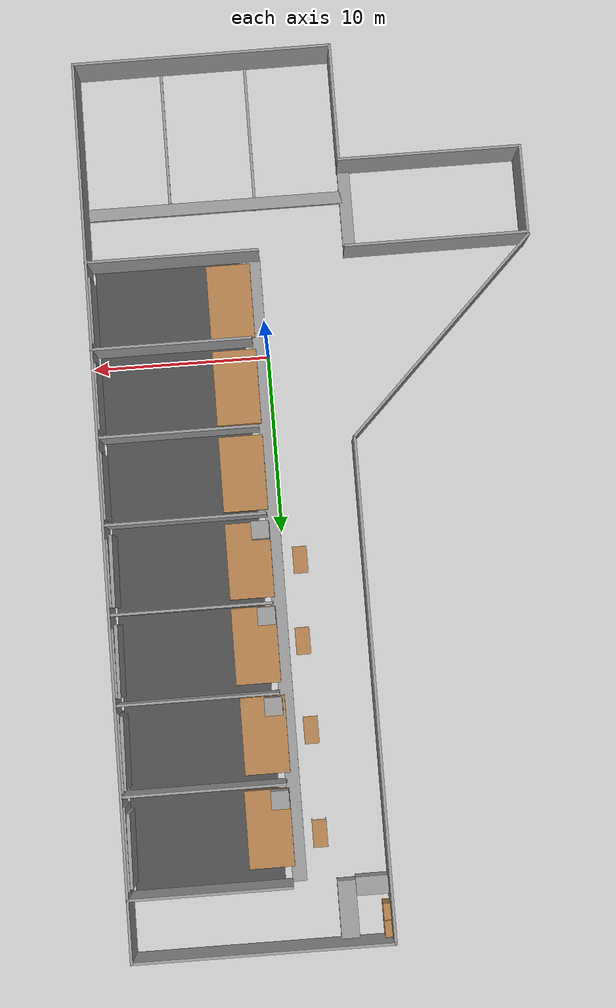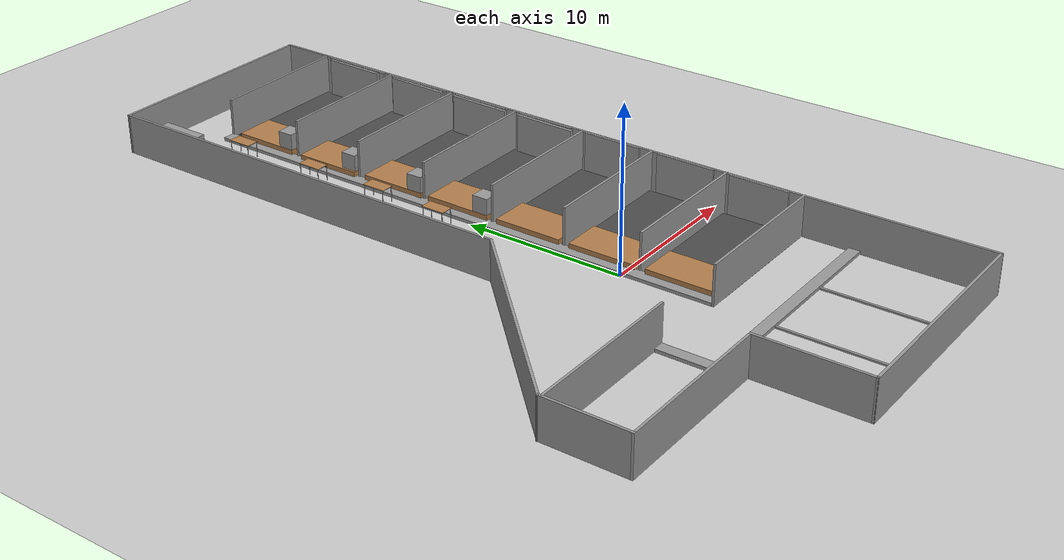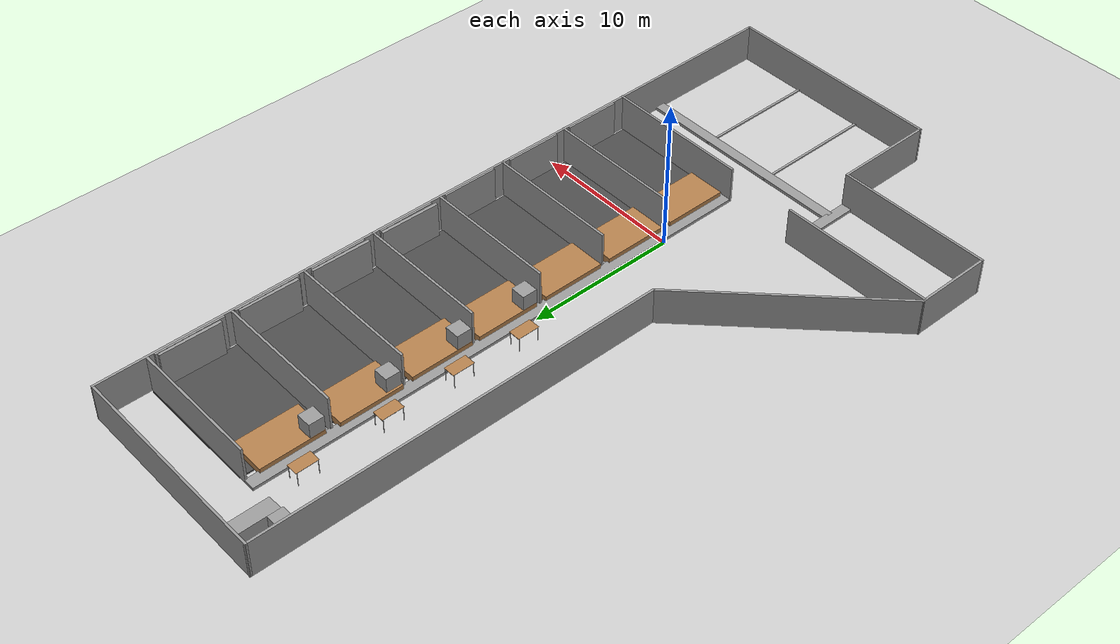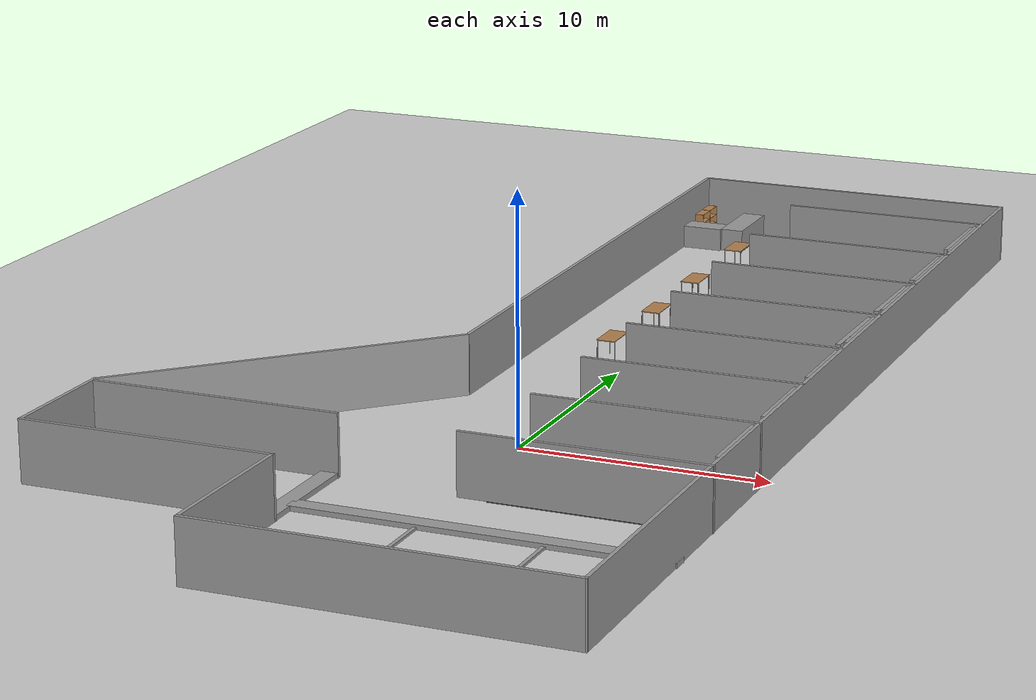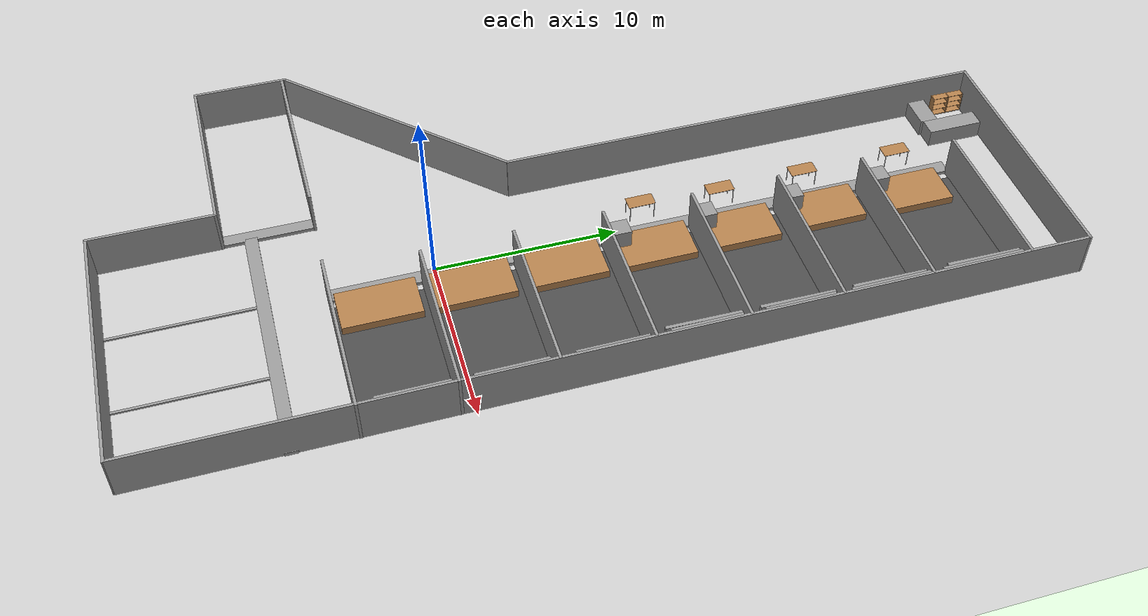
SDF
<sdf version="1.6">
 <world name="default">
  <model name="test__">
   <pose>-2.61572 7.75657 0 0 -0 0</pose>
   <link name="Wall_1">
    <collision name="Wall_1_Collision">
     <geometry><box><size>15 0.15 2.5</size></box></geometry>
     <pose>0 0 1.25 0 -0 0</pose>
    </collision>
    <visual name="Wall_1_Visual">
     <pose>0 0 1.25 0 -0 0</pose>
     <geometry><box><size>15 0.15 2.5</size></box></geometry>
     <material>
      <script><uri>file://media/materials/scripts/gazebo.material</uri><name>Gazebo/Grey</name></script>
      <ambient>1 1 1 1</ambient>
     </material>
     <meta><layer>0</layer></meta>
    </visual>
    <pose>-7.10691 -7.85176 0 0 -0 -2.35619</pose>
   </link>
   <link name="Wall_11">
    <collision name="Wall_11_Collision">
     <geometry><box><size>14.3012 0.15 2.5</size></box></geometry>
     <pose>0 0 1.25 0 -0 0</pose>
    </collision>
    <visual name="Wall_11_Visual">
     <pose>0 0 1.25 0 -0 0</pose>
     <geometry><box><size>14.3012 0.15 2.5</size></box></geometry>
     <material>
      <script><uri>file://media/materials/scripts/gazebo.material</uri><name>Gazebo/Grey</name></script>
      <ambient>1 1 1 1</ambient>
     </material>
     <meta><layer>0</layer></meta>
    </visual>
    <pose>5.26724 24.8122 0 0 -0 3.13958</pose>
   </link>
   <link name="Wall_12">
    <collision name="Wall_12_Collision">
     <geometry><box><size>27.5 0.15 2.5</size></box></geometry>
     <pose>0 0 1.25 0 -0 0</pose>
    </collision>
    <visual name="Wall_12_Visual">
     <pose>0 0 1.25 0 -0 0</pose>
     <geometry><box><size>27.5 0.15 2.5</size></box></geometry>
     <material>
      <script><uri>file://media/materials/scripts/gazebo.material</uri><name>Gazebo/Grey</name></script>
      <ambient>1 1 1 1</ambient>
     </material>
     <meta><layer>0</layer></meta>
    </visual>
    <pose>-1.80834 11.1571 0 0 -0 -1.5708</pose>
   </link>
   <link name="Wall_21">
    <collision name="Wall_21_Collision">
     <geometry><box><size>10.2504 0.15 2.5</size></box></geometry>
     <pose>0 0 1.25 0 -0 0</pose>
    </collision>
    <visual name="Wall_21_Visual">
     <pose>0 0 1.25 0 -0 0</pose>
     <geometry><box><size>10.2504 0.15 2.5</size></box></geometry>
     <material>
      <script><uri>file://media/materials/scripts/gazebo.material</uri><name>Gazebo/Grey</name></script>
      <ambient>1 1 1 1</ambient>
     </material>
     <meta><layer>0</layer></meta>
    </visual>
    <pose>-7.21776 -13.2674 0 0 -0 -3.14011</pose>
   </link>
   <link name="Wall_25">
    <collision name="Wall_25_Collision">
     <geometry><box><size>8.5 0.15 0.1</size></box></geometry>
     <pose>0 0 0.05 0 -0 0</pose>
    </collision>
    <visual name="Wall_25_Visual">
     <pose>0 0 0.05 0 -0 0</pose>
     <geometry><box><size>8.5 0.15 0.1</size></box></geometry>
     <material>
      <script><uri>file://media/materials/scripts/gazebo.material</uri><name>Gazebo/Grey</name></script>
      <ambient>1 1 1 1</ambient>
     </material>
     <meta><layer>0</layer></meta>
    </visual>
    <pose>2.73219 -20.5989 0 0 -0 -1.5708</pose>
   </link>
   <link name="Wall_27">
    <collision name="Wall_27_Collision">
     <geometry><box><size>8.5 0.15 0.1</size></box></geometry>
     <pose>0 0 0.05 0 -0 0</pose>
    </collision>
    <visual name="Wall_27_Visual">
     <pose>0 0 0.05 0 -0 0</pose>
     <geometry><box><size>8.5 0.15 0.1</size></box></geometry>
     <material>
      <script><uri>file://media/materials/scripts/gazebo.material</uri><name>Gazebo/Grey</name></script>
      <ambient>1 1 1 1</ambient>
     </material>
     <meta><layer>0</layer></meta>
    </visual>
    <pose>7.59109 -20.6044 0 0 -0 -1.5708</pose>
   </link>
   <link name="Wall_29">
    <collision name="Wall_29_Collision">
     <geometry><box><size>9.75 0.15 2.5</size></box></geometry>
     <pose>0 0 1.25 0 -0 0</pose>
    </collision>
    <visual name="Wall_29_Visual">
     <pose>0 0 1.25 0 -0 0</pose>
     <geometry><box><size>9.75 0.15 2.5</size></box></geometry>
     <material>
      <script><uri>file://media/materials/scripts/gazebo.material</uri><name>Gazebo/Grey</name></script>
      <ambient>1 1 1 1</ambient>
     </material>
     <meta><layer>0</layer></meta>
    </visual>
    <pose>7.56587 -13.406 0 0 -0 3.14159</pose>
   </link>
   <link name="Wall_3">
    <collision name="Wall_3_Collision">
     <geometry><box><size>5.25 0.15 2.5</size></box></geometry>
     <pose>0 0 1.25 0 -0 0</pose>
    </collision>
    <visual name="Wall_3_Visual">
     <pose>0 0 1.25 0 -0 0</pose>
     <geometry><box><size>5.25 0.15 2.5</size></box></geometry>
     <material>
      <script><uri>file://media/materials/scripts/gazebo.material</uri><name>Gazebo/Grey</name></script>
      <ambient>1 1 1 1</ambient>
     </material>
     <meta><layer>0</layer></meta>
    </visual>
    <pose>-12.3572 -15.652 0 0 -0 -1.5708</pose>
   </link>
   <link name="Wall_31">
    <collision name="Wall_31_Collision">
     <geometry><box><size>34.9 0.8 0.2</size></box></geometry>
     <pose>0 0 0.1 0 -0 0</pose>
    </collision>
    <visual name="Wall_31_Visual">
     <pose>0 0 0.1 0 -0 0</pose>
     <geometry><box><size>34.9 0.8 0.2</size></box></geometry>
     <material>
      <script><uri>file://media/materials/scripts/gazebo.material</uri><name>Gazebo/Grey</name></script>
      <ambient>1 1 1 1</ambient>
     </material>
     <meta><layer>0</layer></meta>
    </visual>
    <pose>3.07724 4.10911 0 0 -0 1.5708</pose>
   </link>
   <link name="Wall_33">
    <collision name="Wall_33_Collision">
     <geometry><box><size>9 0.15 2.5</size></box></geometry>
     <pose>0 0 1.25 0 -0 0</pose>
    </collision>
    <visual name="Wall_33_Visual">
     <pose>0 0 1.25 0 -0 0</pose>
     <geometry><box><size>9 0.15 2.5</size></box></geometry>
     <material>
      <script><uri>file://media/materials/scripts/gazebo.material</uri><name>Gazebo/Grey</name></script>
      <ambient>1 1 1 1</ambient>
     </material>
     <meta><layer>0</layer></meta>
    </visual>
    <pose>7.93132 -8.48567 0 0 -0 0</pose>
   </link>
   <link name="Wall_35">
    <collision name="Wall_35_Collision">
     <geometry><box><size>9 0.15 2.5</size></box></geometry>
     <pose>0 0 1.25 0 -0 0</pose>
    </collision>
    <visual name="Wall_35_Visual">
     <pose>0 0 1.25 0 -0 0</pose>
     <geometry><box><size>9 0.15 2.5</size></box></geometry>
     <material>
      <script><uri>file://media/materials/scripts/gazebo.material</uri><name>Gazebo/Grey</name></script>
      <ambient>1 1 1 1</ambient>
     </material>
     <meta><layer>0</layer></meta>
    </visual>
    <pose>7.91645 -3.54945 0 0 -0 0</pose>
   </link>
   <link name="Wall_37">
    <collision name="Wall_37_Collision">
     <geometry><box><size>9 0.15 2.5</size></box></geometry>
     <pose>0 0 1.25 0 -0 0</pose>
    </collision>
    <visual name="Wall_37_Visual">
     <pose>0 0 1.25 0 -0 0</pose>
     <geometry><box><size>9 0.15 2.5</size></box></geometry>
     <material>
      <script><uri>file://media/materials/scripts/gazebo.material</uri><name>Gazebo/Grey</name></script>
      <ambient>1 1 1 1</ambient>
     </material>
     <meta><layer>0</layer></meta>
    </visual>
    <pose>7.85698 1.29757 0 0 -0 0</pose>
   </link>
   <link name="Wall_39">
    <collision name="Wall_39_Collision">
     <geometry><box><size>9 0.15 2.5</size></box></geometry>
     <pose>0 0 1.25 0 -0 0</pose>
    </collision>
    <visual name="Wall_39_Visual">
     <pose>0 0 1.25 0 -0 0</pose>
     <geometry><box><size>9 0.15 2.5</size></box></geometry>
     <material>
      <script><uri>file://media/materials/scripts/gazebo.material</uri><name>Gazebo/Grey</name></script>
      <ambient>1 1 1 1</ambient>
     </material>
     <meta><layer>0</layer></meta>
    </visual>
    <pose>7.88083 6.21966 0 0 -0 0</pose>
   </link>
   <link name="Wall_4">
    <collision name="Wall_4_Collision">
     <geometry><box><size>10.3399 0.15 2.5</size></box></geometry>
     <pose>0 0 1.25 0 -0 0</pose>
    </collision>
    <visual name="Wall_4_Visual">
     <pose>0 0 1.25 0 -0 0</pose>
     <geometry><box><size>10.3399 0.15 2.5</size></box></geometry>
     <material>
      <script><uri>file://media/materials/scripts/gazebo.material</uri><name>Gazebo/Grey</name></script>
      <ambient>1 1 1 1</ambient>
     </material>
     <meta><layer>0</layer></meta>
    </visual>
    <pose>-7.26247 -18.202 0 0 -0 1.4e-05</pose>
   </link>
   <link name="Wall_41">
    <collision name="Wall_41_Collision">
     <geometry><box><size>9 0.15 2.5</size></box></geometry>
     <pose>0 0 1.25 0 -0 0</pose>
    </collision>
    <visual name="Wall_41_Visual">
     <pose>0 0 1.25 0 -0 0</pose>
     <geometry><box><size>9 0.15 2.5</size></box></geometry>
     <material>
      <script><uri>file://media/materials/scripts/gazebo.material</uri><name>Gazebo/Grey</name></script>
      <ambient>1 1 1 1</ambient>
     </material>
     <meta><layer>0</layer></meta>
    </visual>
    <pose>7.88083 11.1256 0 0 -0 0</pose>
   </link>
   <link name="Wall_43">
    <collision name="Wall_43_Collision">
     <geometry><box><size>9 0.15 2.5</size></box></geometry>
     <pose>0 0 1.25 0 -0 0</pose>
    </collision>
    <visual name="Wall_43_Visual">
     <pose>0 0 1.25 0 -0 0</pose>
     <geometry><box><size>9 0.15 2.5</size></box></geometry>
     <material>
      <script><uri>file://media/materials/scripts/gazebo.material</uri><name>Gazebo/Grey</name></script>
      <ambient>1 1 1 1</ambient>
     </material>
     <meta><layer>0</layer></meta>
    </visual>
    <pose>7.88083 16.0119 0 0 -0 0</pose>
   </link>
   <link name="Wall_45">
    <collision name="Wall_45_Collision">
     <geometry><box><size>9 0.15 2.5</size></box></geometry>
     <pose>0 0 1.25 0 -0 0</pose>
    </collision>
    <visual name="Wall_45_Visual">
     <pose>0 0 1.25 0 -0 0</pose>
     <geometry><box><size>9 0.15 2.5</size></box></geometry>
     <material>
      <script><uri>file://media/materials/scripts/gazebo.material</uri><name>Gazebo/Grey</name></script>
      <ambient>1 1 1 1</ambient>
     </material>
     <meta><layer>0</layer></meta>
    </visual>
    <pose>7.91033 21.4782 0 0 -0 0</pose>
   </link>
   <link name="Wall_49">
    <collision name="Wall_49_Collision">
     <geometry><box><size>5 0.7 0.2</size></box></geometry>
     <pose>0 0 0.1 0 -0 0</pose>
    </collision>
    <visual name="Wall_49_Visual">
     <pose>0 0 0.1 0 -0 0</pose>
     <geometry><box><size>5 0.7 0.2</size></box></geometry>
     <material>
      <script><uri>file://media/materials/scripts/gazebo.material</uri><name>Gazebo/Grey</name></script>
      <ambient>1 1 1 1</ambient>
     </material>
     <meta><layer>0</layer></meta>
    </visual>
    <pose>-2.47472 -15.7158 0 0 -0 1.5708</pose>
   </link>
   <link name="Wall_51">
    <collision name="Wall_51_Collision">
     <geometry><box><size>14.75 0.7 0.2</size></box></geometry>
     <pose>0 0 0.1 0 -0 0</pose>
    </collision>
    <visual name="Wall_51_Visual">
     <pose>0 0 0.1 0 -0 0</pose>
     <geometry><box><size>14.75 0.7 0.2</size></box></geometry>
     <material>
      <script><uri>file://media/materials/scripts/gazebo.material</uri><name>Gazebo/Grey</name></script>
      <ambient>1 1 1 1</ambient>
     </material>
     <meta><layer>0</layer></meta>
    </visual>
    <pose>5.08824 -16.7089 0 0 -0 0</pose>
   </link>
   <link name="Wall_7">
    <collision name="Wall_7_Collision">
     <geometry><box><size>6.75 0.15 2.5</size></box></geometry>
     <pose>0 0 1.25 0 -0 0</pose>
    </collision>
    <visual name="Wall_7_Visual">
     <pose>0 0 1.25 0 -0 0</pose>
     <geometry><box><size>6.75 0.15 2.5</size></box></geometry>
     <material>
      <script><uri>file://media/materials/scripts/gazebo.material</uri><name>Gazebo/Grey</name></script>
      <ambient>1 1 1 1</ambient>
     </material>
     <meta><layer>0</layer></meta>
    </visual>
    <pose>-2.16761 -21.502 0 0 -0 -1.57075</pose>
   </link>
   <link name="Wall_8">
    <collision name="Wall_8_Collision">
     <geometry><box><size>14.6604 0.15 2.5</size></box></geometry>
     <pose>0 0 1.25 0 -0 0</pose>
    </collision>
    <visual name="Wall_8_Visual">
     <pose>0 0 1.25 0 -0 0</pose>
     <geometry><box><size>14.6604 0.15 2.5</size></box></geometry>
     <material>
      <script><uri>file://media/materials/scripts/gazebo.material</uri><name>Gazebo/Grey</name></script>
      <ambient>1 1 1 1</ambient>
     </material>
     <meta><layer>0</layer></meta>
    </visual>
    <pose>5.08768 -24.817 0 0 -0 0.002061</pose>
   </link>
   <link name="Wall_9">
    <collision name="Wall_9_Collision">
     <geometry><box><size>49.75 0.15 2.5</size></box></geometry>
     <pose>0 0 1.25 0 -0 0</pose>
    </collision>
    <visual name="Wall_9_Visual">
     <pose>0 0 1.25 0 -0 0</pose>
     <geometry><box><size>49.75 0.15 2.5</size></box></geometry>
     <material>
      <script><uri>file://media/materials/scripts/gazebo.material</uri><name>Gazebo/Grey</name></script>
      <ambient>1 1 1 1</ambient>
     </material>
     <meta><layer>0</layer></meta>
    </visual>
    <pose>12.3428 -0.002026 0 0 -0 1.5708</pose>
   </link>
   <static>1</static>
  </model>
  <model name="ground_plane">
   <static>1</static>
   <link name="link">
    <collision name="collision">
     <geometry><plane><normal>0 0 1</normal><size>100 100</size></plane></geometry>
     <surface>
      <contact><collide_bitmask>65535</collide_bitmask></contact>
      <friction><ode><mu>100</mu><mu2>50</mu2></ode></friction>
     </surface>
    </collision>
    <visual name="visual">
     <cast_shadows>0</cast_shadows>
     <geometry><plane><normal>0 0 1</normal><size>100 100</size></plane></geometry>
     <material>
      <script><uri>file://media/materials/scripts/gazebo.material</uri><name>Gazebo/Grey</name></script>
     </material>
    </visual>
   </link>
   <pose>-3.51447 11.9136 0 0 -0 0</pose>
  </model>
  <model name="table_clone_clone_1">
   <static>1</static>
   <link name="link">
    <collision name="surface">
     <pose>0 0 1 0 -0 0</pose>
     <geometry><box><size>1.5 0.8 0.03</size></box></geometry>
     <surface><friction><ode><mu>0.6</mu><mu2>0.6</mu2></ode></friction></surface>
    </collision>
    <visual name="visual1">
     <pose>0 0 1 0 -0 0</pose>
     <geometry><box><size>1.5 0.8 0.03</size></box></geometry>
     <material>
      <script><uri>file://media/materials/scripts/gazebo.material</uri><name>Gazebo/Wood</name></script>
     </material>
    </visual>
    <collision name="front_left_leg">
     <pose>0.68 0.38 0.5 0 -0 0</pose>
     <geometry><cylinder><radius>0.02</radius><length>1</length></cylinder></geometry>
    </collision>
    <visual name="front_left_leg">
     <pose>0.68 0.38 0.5 0 -0 0</pose>
     <geometry><cylinder><radius>0.02</radius><length>1</length></cylinder></geometry>
     <material>
      <script><uri>file://media/materials/scripts/gazebo.material</uri><name>Gazebo/Grey</name></script>
     </material>
    </visual>
    <collision name="front_right_leg">
     <pose>0.68 -0.38 0.5 0 -0 0</pose>
     <geometry><cylinder><radius>0.02</radius><length>1</length></cylinder></geometry>
    </collision>
    <visual name="front_right_leg">
     <pose>0.68 -0.38 0.5 0 -0 0</pose>
     <geometry><cylinder><radius>0.02</radius><length>1</length></cylinder></geometry>
     <material>
      <script><uri>file://media/materials/scripts/gazebo.material</uri><name>Gazebo/Grey</name></script>
     </material>
    </visual>
    <collision name="back_right_leg">
     <pose>-0.68 -0.38 0.5 0 -0 0</pose>
     <geometry><cylinder><radius>0.02</radius><length>1</length></cylinder></geometry>
    </collision>
    <visual name="back_right_leg">
     <pose>-0.68 -0.38 0.5 0 -0 0</pose>
     <geometry><cylinder><radius>0.02</radius><length>1</length></cylinder></geometry>
     <material>
      <script><uri>file://media/materials/scripts/gazebo.material</uri><name>Gazebo/Grey</name></script>
     </material>
    </visual>
    <collision name="back_left_leg">
     <pose>-0.68 0.38 0.5 0 -0 0</pose>
     <geometry><cylinder><radius>0.02</radius><length>1</length></cylinder></geometry>
    </collision>
    <visual name="back_left_leg">
     <pose>-0.68 0.38 0.5 0 -0 0</pose>
     <geometry><cylinder><radius>0.02</radius><length>1</length></cylinder></geometry>
     <material>
      <script><uri>file://media/materials/scripts/gazebo.material</uri><name>Gazebo/Grey</name></script>
     </material>
    </visual>
   </link>
   <pose>-0.911845 11.6947 0 0 0 -1.56764</pose>
  </model>
  <model name="table_clone_clone_2">
   <static>1</static>
   <link name="link">
    <collision name="surface">
     <pose>0 0 1 0 -0 0</pose>
     <geometry><box><size>1.5 0.8 0.03</size></box></geometry>
     <surface><friction><ode><mu>0.6</mu><mu2>0.6</mu2></ode></friction></surface>
    </collision>
    <visual name="visual1">
     <pose>0 0 1 0 -0 0</pose>
     <geometry><box><size>1.5 0.8 0.03</size></box></geometry>
     <material>
      <script><uri>file://media/materials/scripts/gazebo.material</uri><name>Gazebo/Wood</name></script>
     </material>
    </visual>
    <collision name="front_left_leg">
     <pose>0.68 0.38 0.5 0 -0 0</pose>
     <geometry><cylinder><radius>0.02</radius><length>1</length></cylinder></geometry>
    </collision>
    <visual name="front_left_leg">
     <pose>0.68 0.38 0.5 0 -0 0</pose>
     <geometry><cylinder><radius>0.02</radius><length>1</length></cylinder></geometry>
     <material>
      <script><uri>file://media/materials/scripts/gazebo.material</uri><name>Gazebo/Grey</name></script>
     </material>
    </visual>
    <collision name="front_right_leg">
     <pose>0.68 -0.38 0.5 0 -0 0</pose>
     <geometry><cylinder><radius>0.02</radius><length>1</length></cylinder></geometry>
    </collision>
    <visual name="front_right_leg">
     <pose>0.68 -0.38 0.5 0 -0 0</pose>
     <geometry><cylinder><radius>0.02</radius><length>1</length></cylinder></geometry>
     <material>
      <script><uri>file://media/materials/scripts/gazebo.material</uri><name>Gazebo/Grey</name></script>
     </material>
    </visual>
    <collision name="back_right_leg">
     <pose>-0.68 -0.38 0.5 0 -0 0</pose>
     <geometry><cylinder><radius>0.02</radius><length>1</length></cylinder></geometry>
    </collision>
    <visual name="back_right_leg">
     <pose>-0.68 -0.38 0.5 0 -0 0</pose>
     <geometry><cylinder><radius>0.02</radius><length>1</length></cylinder></geometry>
     <material>
      <script><uri>file://media/materials/scripts/gazebo.material</uri><name>Gazebo/Grey</name></script>
     </material>
    </visual>
    <collision name="back_left_leg">
     <pose>-0.68 0.38 0.5 0 -0 0</pose>
     <geometry><cylinder><radius>0.02</radius><length>1</length></cylinder></geometry>
    </collision>
    <visual name="back_left_leg">
     <pose>-0.68 0.38 0.5 0 -0 0</pose>
     <geometry><cylinder><radius>0.02</radius><length>1</length></cylinder></geometry>
     <material>
      <script><uri>file://media/materials/scripts/gazebo.material</uri><name>Gazebo/Grey</name></script>
     </material>
    </visual>
   </link>
   <pose>-0.712305 16.1839 0 0 0 -1.56764</pose>
  </model>
  <model name="table_clone_clone_3">
   <static>1</static>
   <link name="link">
    <collision name="surface">
     <pose>0 0 1 0 -0 0</pose>
     <geometry><box><size>1.5 0.8 0.03</size></box></geometry>
     <surface><friction><ode><mu>0.6</mu><mu2>0.6</mu2></ode></friction></surface>
    </collision>
    <visual name="visual1">
     <pose>0 0 1 0 -0 0</pose>
     <geometry><box><size>1.5 0.8 0.03</size></box></geometry>
     <material>
      <script><uri>file://media/materials/scripts/gazebo.material</uri><name>Gazebo/Wood</name></script>
     </material>
    </visual>
    <collision name="front_left_leg">
     <pose>0.68 0.38 0.5 0 -0 0</pose>
     <geometry><cylinder><radius>0.02</radius><length>1</length></cylinder></geometry>
    </collision>
    <visual name="front_left_leg">
     <pose>0.68 0.38 0.5 0 -0 0</pose>
     <geometry><cylinder><radius>0.02</radius><length>1</length></cylinder></geometry>
     <material>
      <script><uri>file://media/materials/scripts/gazebo.material</uri><name>Gazebo/Grey</name></script>
     </material>
    </visual>
    <collision name="front_right_leg">
     <pose>0.68 -0.38 0.5 0 -0 0</pose>
     <geometry><cylinder><radius>0.02</radius><length>1</length></cylinder></geometry>
    </collision>
    <visual name="front_right_leg">
     <pose>0.68 -0.38 0.5 0 -0 0</pose>
     <geometry><cylinder><radius>0.02</radius><length>1</length></cylinder></geometry>
     <material>
      <script><uri>file://media/materials/scripts/gazebo.material</uri><name>Gazebo/Grey</name></script>
     </material>
    </visual>
    <collision name="back_right_leg">
     <pose>-0.68 -0.38 0.5 0 -0 0</pose>
     <geometry><cylinder><radius>0.02</radius><length>1</length></cylinder></geometry>
    </collision>
    <visual name="back_right_leg">
     <pose>-0.68 -0.38 0.5 0 -0 0</pose>
     <geometry><cylinder><radius>0.02</radius><length>1</length></cylinder></geometry>
     <material>
      <script><uri>file://media/materials/scripts/gazebo.material</uri><name>Gazebo/Grey</name></script>
     </material>
    </visual>
    <collision name="back_left_leg">
     <pose>-0.68 0.38 0.5 0 -0 0</pose>
     <geometry><cylinder><radius>0.02</radius><length>1</length></cylinder></geometry>
    </collision>
    <visual name="back_left_leg">
     <pose>-0.68 0.38 0.5 0 -0 0</pose>
     <geometry><cylinder><radius>0.02</radius><length>1</length></cylinder></geometry>
     <material>
      <script><uri>file://media/materials/scripts/gazebo.material</uri><name>Gazebo/Grey</name></script>
     </material>
    </visual>
   </link>
   <pose>-0.788007 21.0863 0 0 0 -1.56764</pose>
  </model>
  <model name="table_clone_clone_4">
   <static>1</static>
   <link name="link">
    <collision name="surface">
     <pose>0 0 1 0 -0 0</pose>
     <geometry><box><size>1.5 0.8 0.03</size></box></geometry>
     <surface><friction><ode><mu>0.6</mu><mu2>0.6</mu2></ode></friction></surface>
    </collision>
    <visual name="visual1">
     <pose>0 0 1 0 -0 0</pose>
     <geometry><box><size>1.5 0.8 0.03</size></box></geometry>
     <material>
      <script><uri>file://media/materials/scripts/gazebo.material</uri><name>Gazebo/Wood</name></script>
     </material>
    </visual>
    <collision name="front_left_leg">
     <pose>0.68 0.38 0.5 0 -0 0</pose>
     <geometry><cylinder><radius>0.02</radius><length>1</length></cylinder></geometry>
    </collision>
    <visual name="front_left_leg">
     <pose>0.68 0.38 0.5 0 -0 0</pose>
     <geometry><cylinder><radius>0.02</radius><length>1</length></cylinder></geometry>
     <material>
      <script><uri>file://media/materials/scripts/gazebo.material</uri><name>Gazebo/Grey</name></script>
     </material>
    </visual>
    <collision name="front_right_leg">
     <pose>0.68 -0.38 0.5 0 -0 0</pose>
     <geometry><cylinder><radius>0.02</radius><length>1</length></cylinder></geometry>
    </collision>
    <visual name="front_right_leg">
     <pose>0.68 -0.38 0.5 0 -0 0</pose>
     <geometry><cylinder><radius>0.02</radius><length>1</length></cylinder></geometry>
     <material>
      <script><uri>file://media/materials/scripts/gazebo.material</uri><name>Gazebo/Grey</name></script>
     </material>
    </visual>
    <collision name="back_right_leg">
     <pose>-0.68 -0.38 0.5 0 -0 0</pose>
     <geometry><cylinder><radius>0.02</radius><length>1</length></cylinder></geometry>
    </collision>
    <visual name="back_right_leg">
     <pose>-0.68 -0.38 0.5 0 -0 0</pose>
     <geometry><cylinder><radius>0.02</radius><length>1</length></cylinder></geometry>
     <material>
      <script><uri>file://media/materials/scripts/gazebo.material</uri><name>Gazebo/Grey</name></script>
     </material>
    </visual>
    <collision name="back_left_leg">
     <pose>-0.68 0.38 0.5 0 -0 0</pose>
     <geometry><cylinder><radius>0.02</radius><length>1</length></cylinder></geometry>
    </collision>
    <visual name="back_left_leg">
     <pose>-0.68 0.38 0.5 0 -0 0</pose>
     <geometry><cylinder><radius>0.02</radius><length>1</length></cylinder></geometry>
     <material>
      <script><uri>file://media/materials/scripts/gazebo.material</uri><name>Gazebo/Grey</name></script>
     </material>
    </visual>
   </link>
   <pose>-0.831744 26.6989 0 0 0 -1.56764</pose>
  </model>
  <model name="bookshelf">
   <static>1</static>
   <link name="link">
    <inertial><mass>1</mass></inertial>
    <collision name="back">
     <pose>0 0.005 0.6 0 -0 0</pose>
     <geometry><box><size>0.9 0.01 1.2</size></box></geometry>
    </collision>
    <visual name="visual1">
     <pose>0 0.005 0.6 0 -0 0</pose>
     <geometry><box><size>0.9 0.01 1.2</size></box></geometry>
     <material>
      <script><uri>file://media/materials/scripts/gazebo.material</uri><name>Gazebo/Wood</name></script>
     </material>
    </visual>
    <collision name="left_side">
     <pose>0.45 -0.195 0.6 0 -0 0</pose>
     <geometry><box><size>0.02 0.4 1.2</size></box></geometry>
    </collision>
    <visual name="visual2">
     <pose>0.45 -0.195 0.6 0 -0 0</pose>
     <geometry><box><size>0.02 0.4 1.2</size></box></geometry>
     <material>
      <script><uri>file://media/materials/scripts/gazebo.material</uri><name>Gazebo/Wood</name></script>
     </material>
    </visual>
    <collision name="right_side">
     <pose>-0.45 -0.195 0.6 0 -0 0</pose>
     <geometry><box><size>0.02 0.4 1.2</size></box></geometry>
    </collision>
    <visual name="visual3">
     <pose>-0.45 -0.195 0.6 0 -0 0</pose>
     <geometry><box><size>0.02 0.4 1.2</size></box></geometry>
     <material>
      <script><uri>file://media/materials/scripts/gazebo.material</uri><name>Gazebo/Wood</name></script>
     </material>
    </visual>
    <collision name="bottom">
     <pose>0 -0.195 0.03 0 -0 0</pose>
     <geometry><box><size>0.88 0.4 0.06</size></box></geometry>
    </collision>
    <visual name="visual4">
     <pose>0 -0.195 0.03 0 -0 0</pose>
     <geometry><box><size>0.88 0.4 0.06</size></box></geometry>
     <material>
      <script><uri>file://media/materials/scripts/gazebo.material</uri><name>Gazebo/Wood</name></script>
     </material>
    </visual>
    <collision name="top">
     <pose>0 -0.195 1.19 0 -0 0</pose>
     <geometry><box><size>0.88 0.4 0.02</size></box></geometry>
    </collision>
    <visual name="visual5">
     <pose>0 -0.195 1.19 0 -0 0</pose>
     <geometry><box><size>0.88 0.4 0.02</size></box></geometry>
     <material>
      <script><uri>file://media/materials/scripts/gazebo.material</uri><name>Gazebo/Wood</name></script>
     </material>
    </visual>
    <collision name="low_shelf">
     <pose>0 -0.195 0.43 0 -0 0</pose>
     <geometry><box><size>0.88 0.4 0.02</size></box></geometry>
    </collision>
    <visual name="visual6">
     <pose>0 -0.195 0.43 0 -0 0</pose>
     <geometry><box><size>0.88 0.4 0.02</size></box></geometry>
     <material>
      <script><uri>file://media/materials/scripts/gazebo.material</uri><name>Gazebo/Wood</name></script>
     </material>
    </visual>
    <collision name="high_shelf">
     <pose>0 -0.195 0.8 0 -0 0</pose>
     <geometry><box><size>0.88 0.4 0.02</size></box></geometry>
    </collision>
    <visual name="visual7">
     <pose>0 -0.195 0.8 0 -0 0</pose>
     <geometry><box><size>0.88 0.4 0.02</size></box></geometry>
     <material>
      <script><uri>file://media/materials/scripts/gazebo.material</uri><name>Gazebo/Wood</name></script>
     </material>
    </visual>
   </link>
   <pose>-4.34494 32.0429 0 0 -0 1.57907</pose>
  </model>
  <model name="bookshelf_clone">
   <static>1</static>
   <link name="link">
    <inertial><mass>1</mass></inertial>
    <collision name="back">
     <pose>0 0.005 0.6 0 -0 0</pose>
     <geometry><box><size>0.9 0.01 1.2</size></box></geometry>
    </collision>
    <visual name="visual1">
     <pose>0 0.005 0.6 0 -0 0</pose>
     <geometry><box><size>0.9 0.01 1.2</size></box></geometry>
     <material>
      <script><uri>file://media/materials/scripts/gazebo.material</uri><name>Gazebo/Wood</name></script>
     </material>
    </visual>
    <collision name="left_side">
     <pose>0.45 -0.195 0.6 0 -0 0</pose>
     <geometry><box><size>0.02 0.4 1.2</size></box></geometry>
    </collision>
    <visual name="visual2">
     <pose>0.45 -0.195 0.6 0 -0 0</pose>
     <geometry><box><size>0.02 0.4 1.2</size></box></geometry>
     <material>
      <script><uri>file://media/materials/scripts/gazebo.material</uri><name>Gazebo/Wood</name></script>
     </material>
    </visual>
    <collision name="right_side">
     <pose>-0.45 -0.195 0.6 0 -0 0</pose>
     <geometry><box><size>0.02 0.4 1.2</size></box></geometry>
    </collision>
    <visual name="visual3">
     <pose>-0.45 -0.195 0.6 0 -0 0</pose>
     <geometry><box><size>0.02 0.4 1.2</size></box></geometry>
     <material>
      <script><uri>file://media/materials/scripts/gazebo.material</uri><name>Gazebo/Wood</name></script>
     </material>
    </visual>
    <collision name="bottom">
     <pose>0 -0.195 0.03 0 -0 0</pose>
     <geometry><box><size>0.88 0.4 0.06</size></box></geometry>
    </collision>
    <visual name="visual4">
     <pose>0 -0.195 0.03 0 -0 0</pose>
     <geometry><box><size>0.88 0.4 0.06</size></box></geometry>
     <material>
      <script><uri>file://media/materials/scripts/gazebo.material</uri><name>Gazebo/Wood</name></script>
     </material>
    </visual>
    <collision name="top">
     <pose>0 -0.195 1.19 0 -0 0</pose>
     <geometry><box><size>0.88 0.4 0.02</size></box></geometry>
    </collision>
    <visual name="visual5">
     <pose>0 -0.195 1.19 0 -0 0</pose>
     <geometry><box><size>0.88 0.4 0.02</size></box></geometry>
     <material>
      <script><uri>file://media/materials/scripts/gazebo.material</uri><name>Gazebo/Wood</name></script>
     </material>
    </visual>
    <collision name="low_shelf">
     <pose>0 -0.195 0.43 0 -0 0</pose>
     <geometry><box><size>0.88 0.4 0.02</size></box></geometry>
    </collision>
    <visual name="visual6">
     <pose>0 -0.195 0.43 0 -0 0</pose>
     <geometry><box><size>0.88 0.4 0.02</size></box></geometry>
     <material>
      <script><uri>file://media/materials/scripts/gazebo.material</uri><name>Gazebo/Wood</name></script>
     </material>
    </visual>
    <collision name="high_shelf">
     <pose>0 -0.195 0.8 0 -0 0</pose>
     <geometry><box><size>0.88 0.4 0.02</size></box></geometry>
    </collision>
    <visual name="visual7">
     <pose>0 -0.195 0.8 0 -0 0</pose>
     <geometry><box><size>0.88 0.4 0.02</size></box></geometry>
     <material>
      <script><uri>file://media/materials/scripts/gazebo.material</uri><name>Gazebo/Wood</name></script>
     </material>
    </visual>
   </link>
   <pose>-4.34485 31.1218 0 0 -0 1.57618</pose>
  </model>
  <model name="screen">
   <pose>9.6 12.0104 0 0 -0 0</pose>
   <link name="Wall_0">
    <collision name="Wall_0_Collision">
     <geometry><box><size>3.75 0.15 2.5</size></box></geometry>
     <pose>0 0 1.25 0 -0 0</pose>
    </collision>
    <visual name="Wall_0_Visual">
     <pose>0 0 1.25 0 -0 0</pose>
     <geometry><box><size>3.75 0.15 2.5</size></box></geometry>
     <material>
      <script><uri>file://media/materials/scripts/gazebo.material</uri><name>Gazebo/Grey</name></script>
      <ambient>1 1 1 1</ambient>
     </material>
     <meta><layer>0</layer></meta>
    </visual>
    <pose>0 -14.926 0 0 -0 -1.5708</pose>
   </link>
   <link name="Wall_11">
    <collision name="Wall_11_Collision">
     <geometry><box><size>4.3 0.15 2.5</size></box></geometry>
     <pose>0 0 1.25 0 -0 0</pose>
    </collision>
    <visual name="Wall_11_Visual">
     <pose>0 0 1.25 0 -0 0</pose>
     <geometry><box><size>4.3 0.15 2.5</size></box></geometry>
     <material>
      <script><uri>file://media/materials/scripts/gazebo.material</uri><name>Gazebo/Grey</name></script>
      <ambient>1 1 1 1</ambient>
     </material>
     <meta><layer>0</layer></meta>
    </visual>
    <pose>0 9.451 0 0 -0 1.5708</pose>
   </link>
   <link name="Wall_13">
    <collision name="Wall_13_Collision">
     <geometry><box><size>4.5 0.15 2.5</size></box></geometry>
     <pose>0 0 1.25 0 -0 0</pose>
    </collision>
    <visual name="Wall_13_Visual">
     <pose>0 0 1.25 0 -0 0</pose>
     <geometry><box><size>4.5 0.15 2.5</size></box></geometry>
     <material>
      <script><uri>file://media/materials/scripts/gazebo.material</uri><name>Gazebo/Grey</name></script>
      <ambient>1 1 1 1</ambient>
     </material>
     <meta><layer>0</layer></meta>
    </visual>
    <pose>0 14.551 0 0 -0 1.5708</pose>
   </link>
   <link name="Wall_2">
    <collision name="Wall_2_Collision">
     <geometry><box><size>3.75 0.15 2.5</size></box></geometry>
     <pose>0 0 1.25 0 -0 0</pose>
    </collision>
    <visual name="Wall_2_Visual">
     <pose>0 0 1.25 0 -0 0</pose>
     <geometry><box><size>3.75 0.15 2.5</size></box></geometry>
     <material>
      <script><uri>file://media/materials/scripts/gazebo.material</uri><name>Gazebo/Grey</name></script>
      <ambient>1 1 1 1</ambient>
     </material>
     <meta><layer>0</layer></meta>
    </visual>
    <pose>0 -10.129 0 0 -0 -1.5708</pose>
   </link>
   <link name="Wall_4">
    <collision name="Wall_4_Collision">
     <geometry><box><size>3.75 0.15 2.5</size></box></geometry>
     <pose>0 0 1.25 0 -0 0</pose>
    </collision>
    <visual name="Wall_4_Visual">
     <pose>0 0 1.25 0 -0 0</pose>
     <geometry><box><size>3.75 0.15 2.5</size></box></geometry>
     <material>
      <script><uri>file://media/materials/scripts/gazebo.material</uri><name>Gazebo/Grey</name></script>
      <ambient>1 1 1 1</ambient>
     </material>
     <meta><layer>0</layer></meta>
    </visual>
    <pose>0 -5.126 0 0 -0 1.5708</pose>
   </link>
   <link name="Wall_6">
    <collision name="Wall_6_Collision">
     <geometry><box><size>3.75 0.15 2.5</size></box></geometry>
     <pose>0 0 1.25 0 -0 0</pose>
    </collision>
    <visual name="Wall_6_Visual">
     <pose>0 0 1.25 0 -0 0</pose>
     <geometry><box><size>3.75 0.15 2.5</size></box></geometry>
     <material>
      <script><uri>file://media/materials/scripts/gazebo.material</uri><name>Gazebo/Grey</name></script>
      <ambient>1 1 1 1</ambient>
     </material>
     <meta><layer>0</layer></meta>
    </visual>
    <pose>0 -0.324 0 0 -0 1.5708</pose>
   </link>
   <link name="Wall_9">
    <collision name="Wall_9_Collision">
     <geometry><box><size>3.75 0.15 2.5</size></box></geometry>
     <pose>0 0 1.25 0 -0 0</pose>
    </collision>
    <visual name="Wall_9_Visual">
     <pose>0 0 1.25 0 -0 0</pose>
     <geometry><box><size>3.75 0.15 2.5</size></box></geometry>
     <material>
      <script><uri>file://media/materials/scripts/gazebo.material</uri><name>Gazebo/Grey</name></script>
      <ambient>1 1 1 1</ambient>
     </material>
     <meta><layer>0</layer></meta>
    </visual>
    <pose>0 4.576 0 0 -0 1.5708</pose>
   </link>
   <static>1</static>
  </model>
  <model name="cut_floor_wood">
   <pose>1.85616 11.5237 0 0 -0 0</pose>
   <link name="Wall_0">
    <collision name="Wall_0_Collision">
     <geometry><box><size>4.25 2.5 0.5</size></box></geometry>
     <pose>0 0 0.25 0 -0 0</pose>
    </collision>
    <visual name="Wall_0_Visual">
     <pose>0 0 0.25 0 -0 0</pose>
     <geometry><box><size>4.25 2.5 0.5</size></box></geometry>
     <material>
      <script><uri>file://media/materials/scripts/gazebo.material</uri><name>Gazebo/Wood</name></script>
      <ambient>1 1 1 1</ambient>
     </material>
     <meta><layer>0</layer></meta>
    </visual>
    <pose>0.0645 -14.794 0 0 -0 1.5708</pose>
   </link>
   <link name="Wall_10">
    <collision name="Wall_10_Collision">
     <geometry><box><size>4.25 2.5 0.5</size></box></geometry>
     <pose>0 0 0.25 0 -0 0</pose>
    </collision>
    <visual name="Wall_10_Visual">
     <pose>0 0 0.25 0 -0 0</pose>
     <geometry><box><size>4.25 2.5 0.5</size></box></geometry>
     <material>
      <script><uri>file://media/materials/scripts/gazebo.material</uri><name>Gazebo/Wood</name></script>
      <ambient>1 1 1 1</ambient>
     </material>
     <meta><layer>0</layer></meta>
    </visual>
    <pose>-0.0645 9.688 0 0 -0 1.5708</pose>
   </link>
   <link name="Wall_12">
    <collision name="Wall_12_Collision">
     <geometry><box><size>4.25 2.5 0.5</size></box></geometry>
     <pose>0 0 0.25 0 -0 0</pose>
    </collision>
    <visual name="Wall_12_Visual">
     <pose>0 0 0.25 0 -0 0</pose>
     <geometry><box><size>4.25 2.5 0.5</size></box></geometry>
     <material>
      <script><uri>file://media/materials/scripts/gazebo.material</uri><name>Gazebo/Wood</name></script>
      <ambient>1 1 1 1</ambient>
     </material>
     <meta><layer>0</layer></meta>
    </visual>
    <pose>0.0645 14.794 0 0 -0 1.5708</pose>
   </link>
   <link name="Wall_2">
    <collision name="Wall_2_Collision">
     <geometry><box><size>4.25 2.5 0.5</size></box></geometry>
     <pose>0 0 0.25 0 -0 0</pose>
    </collision>
    <visual name="Wall_2_Visual">
     <pose>0 0 0.25 0 -0 0</pose>
     <geometry><box><size>4.25 2.5 0.5</size></box></geometry>
     <material>
      <script><uri>file://media/materials/scripts/gazebo.material</uri><name>Gazebo/Wood</name></script>
      <ambient>1 1 1 1</ambient>
     </material>
     <meta><layer>0</layer></meta>
    </visual>
    <pose>0.0645 -9.862 0 0 -0 1.5708</pose>
   </link>
   <link name="Wall_4">
    <collision name="Wall_4_Collision">
     <geometry><box><size>4.25 2.5 0.5</size></box></geometry>
     <pose>0 0 0.25 0 -0 0</pose>
    </collision>
    <visual name="Wall_4_Visual">
     <pose>0 0 0.25 0 -0 0</pose>
     <geometry><box><size>4.25 2.5 0.5</size></box></geometry>
     <material>
      <script><uri>file://media/materials/scripts/gazebo.material</uri><name>Gazebo/Wood</name></script>
      <ambient>1 1 1 1</ambient>
     </material>
     <meta><layer>0</layer></meta>
    </visual>
    <pose>0.0645 -4.945 0 0 -0 1.5708</pose>
   </link>
   <link name="Wall_6">
    <collision name="Wall_6_Collision">
     <geometry><box><size>4.25 2.5 0.5</size></box></geometry>
     <pose>0 0 0.25 0 -0 0</pose>
    </collision>
    <visual name="Wall_6_Visual">
     <pose>0 0 0.25 0 -0 0</pose>
     <geometry><box><size>4.25 2.5 0.5</size></box></geometry>
     <material>
      <script><uri>file://media/materials/scripts/gazebo.material</uri><name>Gazebo/Wood</name></script>
      <ambient>1 1 1 1</ambient>
     </material>
     <meta><layer>0</layer></meta>
    </visual>
    <pose>0.0645 -0.027 0 0 -0 1.5708</pose>
   </link>
   <link name="Wall_8">
    <collision name="Wall_8_Collision">
     <geometry><box><size>4.25 2.5 0.5</size></box></geometry>
     <pose>0 0 0.25 0 -0 0</pose>
    </collision>
    <visual name="Wall_8_Visual">
     <pose>0 0 0.25 0 -0 0</pose>
     <geometry><box><size>4.25 2.5 0.5</size></box></geometry>
     <material>
      <script><uri>file://media/materials/scripts/gazebo.material</uri><name>Gazebo/Wood</name></script>
      <ambient>1 1 1 1</ambient>
     </material>
     <meta><layer>0</layer></meta>
    </visual>
    <pose>0.0645 4.72 0 0 -0 1.5708</pose>
   </link>
   <static>1</static>
  </model>
  <model name="asphalt_plane">
   <static>1</static>
   <link name="link">
    <collision name="collision"><geometry><box><size>8.27888 35.0254 0.1</size></box></geometry></collision>
    <visual name="visual">
     <cast_shadows>0</cast_shadows>
     <geometry><box><size>8.27888 35.0254 0.1</size></box></geometry>
     <material>
      <script>
       <uri>model://asphalt_plane/materials/scripts</uri>
       <uri>model://asphalt_plane/materials/textures</uri>
       <name>vrc/asphalt</name>
      </script>
     </material>
    </visual>
   </link>
   <pose>5.3801 11.8228 0 0 -0 0</pose>
  </model>
  <model name="grey_wall">
   <static>1</static>
   <link name="link">
    <pose>0 0 1.4 0 -0 0</pose>
    <collision name="collision"><geometry><box><size>4 0.2 2.4</size></box></geometry></collision>
    <visual name="visual">
     <cast_shadows>0</cast_shadows>
     <geometry><box><size>4 0.2 2.4</size></box></geometry>
     <material>
      <script>
       <uri>model://grey_wall/materials/scripts</uri>
       <uri>model://grey_wall/materials/textures</uri>
       <name>vrc/grey_wall</name>
      </script>
     </material>
    </visual>
   </link>
   <pose>9.42796 26.6683 -0.13155 0 0 -1.58718</pose>
  </model>
  <model name="grey_wall_clone">
   <static>1</static>
   <link name="link">
    <pose>0 0 1.4 0 -0 0</pose>
    <collision name="collision"><geometry><box><size>4 0.2 2.4</size></box></geometry></collision>
    <visual name="visual">
     <cast_shadows>0</cast_shadows>
     <geometry><box><size>4 0.2 2.4</size></box></geometry>
     <material>
      <script>
       <uri>model://grey_wall/materials/scripts</uri>
       <uri>model://grey_wall/materials/textures</uri>
       <name>vrc/grey_wall</name>
      </script>
     </material>
    </visual>
   </link>
   <pose>9.43926 21.4648 -0.13155 0 0 -1.58718</pose>
  </model>
  <model name="grey_wall_clone_0">
   <static>1</static>
   <link name="link">
    <pose>0 0 1.4 0 -0 0</pose>
    <collision name="collision"><geometry><box><size>4 0.2 2.4</size></box></geometry></collision>
    <visual name="visual">
     <cast_shadows>0</cast_shadows>
     <geometry><box><size>4 0.2 2.4</size></box></geometry>
     <material>
      <script>
       <uri>model://grey_wall/materials/scripts</uri>
       <uri>model://grey_wall/materials/textures</uri>
       <name>vrc/grey_wall</name>
      </script>
     </material>
    </visual>
   </link>
   <pose>9.42232 16.5166 -0.13155 0 0 -1.58718</pose>
  </model>
  <model name="grey_wall_clone_1">
   <static>1</static>
   <link name="link">
    <pose>0 0 1.4 0 -0 0</pose>
    <collision name="collision"><geometry><box><size>4 0.2 2.4</size></box></geometry></collision>
    <visual name="visual">
     <cast_shadows>0</cast_shadows>
     <geometry><box><size>4 0.2 2.4</size></box></geometry>
     <material>
      <script>
       <uri>model://grey_wall/materials/scripts</uri>
       <uri>model://grey_wall/materials/textures</uri>
       <name>vrc/grey_wall</name>
      </script>
     </material>
    </visual>
   </link>
   <pose>9.39795 11.5799 -0.13155 0 0 -1.58718</pose>
  </model>
  <model name="unit_box">
   <pose>-2.07076 30.8812 0.499996 -1e-06 -5e-06 0.002387</pose>
   <link name="link">
    <inertial>
     <mass>1</mass>
     <inertia>
      <ixx>0.166667</ixx>
      <ixy>0</ixy>
      <ixz>0</ixz>
      <iyy>0.166667</iyy>
      <iyz>0</iyz>
      <izz>0.166667</izz>
     </inertia>
    </inertial>
    <collision name="collision"><geometry><box><size>1 3.10204 1</size></box></geometry></collision>
    <visual name="visual">
     <geometry><box><size>1 3.10204 1</size></box></geometry>
     <material>
      <script><name>Gazebo/Grey</name><uri>file://media/materials/scripts/gazebo.material</uri></script>
     </material>
    </visual>
   </link>
  </model>
  <model name="unit_box_0">
   <pose>-3.45906 29.6963 0.5 0 0 -0.000816</pose>
   <link name="link">
    <inertial>
     <mass>1</mass>
     <inertia>
      <ixx>0.166667</ixx>
      <ixy>0</ixy>
      <ixz>0</ixz>
      <iyy>0.166667</iyy>
      <iyz>0</iyz>
      <izz>0.166667</izz>
     </inertia>
    </inertial>
    <collision name="collision"><geometry><box><size>1.77902 1 1</size></box></geometry></collision>
    <visual name="visual">
     <geometry><box><size>1.77902 1 1</size></box></geometry>
     <material>
      <script><name>Gazebo/Grey</name><uri>file://media/materials/scripts/gazebo.material</uri></script>
     </material>
    </visual>
   </link>
  </model>
  <model name="unit_box_1">
   <pose>1.19162 24.6948 0.999995 1e-05 -0 2.5e-05</pose>
   <link name="link">
    <inertial>
     <mass>1</mass>
     <inertia>
      <ixx>0.166667</ixx>
      <ixy>0</ixy>
      <ixz>0</ixz>
      <iyy>0.166667</iyy>
      <iyz>0</iyz>
      <izz>0.166667</izz>
     </inertia>
    </inertial>
    <collision name="collision"><geometry><box><size>1 1 1</size></box></geometry></collision>
    <visual name="visual">
     <geometry><box><size>1 1 1</size></box></geometry>
     <material>
      <script><name>Gazebo/Grey</name><uri>file://media/materials/scripts/gazebo.material</uri></script>
     </material>
    </visual>
   </link>
  </model>
  <model name="unit_box_2">
   <pose>1.17449 19.6286 0.999995 -1e-05 -0 1.9e-05</pose>
   <link name="link">
    <inertial>
     <mass>1</mass>
     <inertia>
      <ixx>0.166667</ixx>
      <ixy>0</ixy>
      <ixz>0</ixz>
      <iyy>0.166667</iyy>
      <iyz>0</iyz>
      <izz>0.166667</izz>
     </inertia>
    </inertial>
    <collision name="collision"><geometry><box><size>1 1 1</size></box></geometry></collision>
    <visual name="visual">
     <geometry><box><size>1 1 1</size></box></geometry>
     <material>
      <script><name>Gazebo/Grey</name><uri>file://media/materials/scripts/gazebo.material</uri></script>
     </material>
    </visual>
   </link>
  </model>
  <model name="unit_box_3">
   <pose>1.18822 14.6668 0.999995 1e-05 -0 2.4e-05</pose>
   <link name="link">
    <inertial>
     <mass>1</mass>
     <inertia>
      <ixx>0.166667</ixx>
      <ixy>0</ixy>
      <ixz>0</ixz>
      <iyy>0.166667</iyy>
      <iyz>0</iyz>
      <izz>0.166667</izz>
     </inertia>
    </inertial>
    <collision name="collision"><geometry><box><size>1 1 1</size></box></geometry></collision>
    <visual name="visual">
     <geometry><box><size>1 1 1</size></box></geometry>
     <material>
      <script><name>Gazebo/Grey</name><uri>file://media/materials/scripts/gazebo.material</uri></script>
     </material>
    </visual>
   </link>
  </model>
  <model name="unit_box_4">
   <pose>1.18506 9.88312 0.999995 -1e-05 0 1.8e-05</pose>
   <link name="link">
    <inertial>
     <mass>1</mass>
     <inertia>
      <ixx>0.166667</ixx>
      <ixy>0</ixy>
      <ixz>0</ixz>
      <iyy>0.166667</iyy>
      <iyz>0</iyz>
      <izz>0.166667</izz>
     </inertia>
    </inertial>
    <collision name="collision"><geometry><box><size>1 1 1</size></box></geometry></collision>
    <visual name="visual">
     <geometry><box><size>1 1 1</size></box></geometry>
     <material>
      <script><name>Gazebo/Grey</name><uri>file://media/materials/scripts/gazebo.material</uri></script>
     </material>
    </visual>
   </link>
  </model>
 </world>
</sdf>
